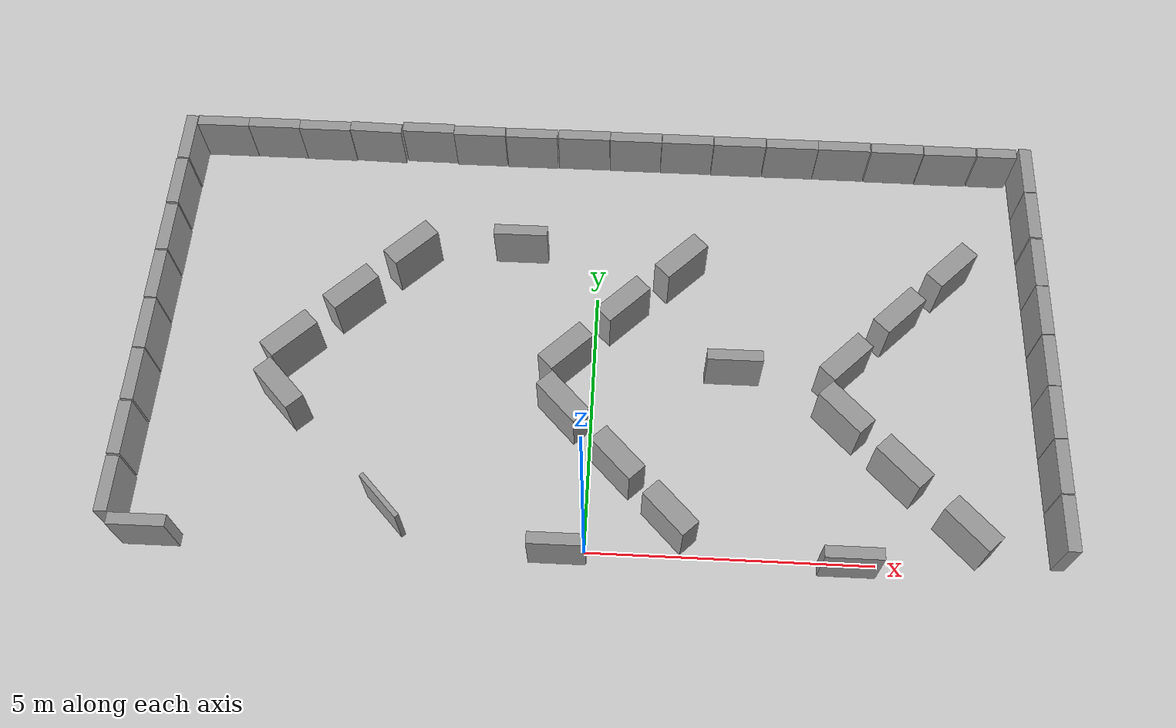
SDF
<sdf version="1.6">
 <world name="default">
  <model name="ground_plane">
   <static>1</static>
   <static>1</static>
   <link name="link">
    <collision name="collision">
     <geometry><plane><normal>0 0 1</normal><size>100 100</size></plane></geometry>
     <surface><friction><ode><mu>100</mu><mu2>50</mu2></ode></friction></surface>
    </collision>
    <visual name="visual">
     <cast_shadows>0</cast_shadows>
     <geometry><plane><normal>0 0 1</normal><size>100 100</size></plane></geometry>
     <material>
      <script><uri>file://media/materials/scripts/gazebo.material</uri><name>Gazebo/Grey</name></script>
     </material>
    </visual>
   </link>
  </model>
  <model name="unit_box_clone">
   <pose>-7.49845 8.11981 0.5 0 -0 0.000219</pose>
   <link name="link">
    <inertial>
     <mass>1</mass>
     <inertia>
      <ixx>0.166667</ixx>
      <ixy>0</ixy>
      <ixz>0</ixz>
      <iyy>0.166667</iyy>
      <iyz>0</iyz>
      <izz>0.166667</izz>
     </inertia>
    </inertial>
    <collision name="collision"><geometry><box><size>1 0.210541 1</size></box></geometry></collision>
    <visual name="visual">
     <geometry><box><size>1 0.210541 1</size></box></geometry>
     <material>
      <script><name>Gazebo/Grey</name><uri>file://media/materials/scripts/gazebo.material</uri></script>
     </material>
    </visual>
   </link>
  </model>
  <model name="unit_box_clone_0">
   <pose>-6.4973 8.11967 0.5 0 -0 -0.002385</pose>
   <link name="link">
    <inertial>
     <mass>1</mass>
     <inertia>
      <ixx>0.166667</ixx>
      <ixy>0</ixy>
      <ixz>0</ixz>
      <iyy>0.166667</iyy>
      <iyz>0</iyz>
      <izz>0.166667</izz>
     </inertia>
    </inertial>
    <collision name="collision"><geometry><box><size>1 0.210541 1</size></box></geometry></collision>
    <visual name="visual">
     <geometry><box><size>1 0.210541 1</size></box></geometry>
     <material>
      <script><name>Gazebo/Grey</name><uri>file://media/materials/scripts/gazebo.material</uri></script>
     </material>
    </visual>
   </link>
  </model>
  <model name="unit_box_clone_1">
   <pose>-5.49732 8.10842 0.5 0 -0 -0.002377</pose>
   <link name="link">
    <inertial>
     <mass>1</mass>
     <inertia>
      <ixx>0.166667</ixx>
      <ixy>0</ixy>
      <ixz>0</ixz>
      <iyy>0.166667</iyy>
      <iyz>0</iyz>
      <izz>0.166667</izz>
     </inertia>
    </inertial>
    <collision name="collision"><geometry><box><size>1 0.210541 1</size></box></geometry></collision>
    <visual name="visual">
     <geometry><box><size>1 0.210541 1</size></box></geometry>
     <material>
      <script><name>Gazebo/Grey</name><uri>file://media/materials/scripts/gazebo.material</uri></script>
     </material>
    </visual>
   </link>
  </model>
  <model name="unit_box_clone_2">
   <pose>-4.49485 8.11074 0.5 0 0 -0.02684</pose>
   <link name="link">
    <inertial>
     <mass>1</mass>
     <inertia>
      <ixx>0.166667</ixx>
      <ixy>0</ixy>
      <ixz>0</ixz>
      <iyy>0.166667</iyy>
      <iyz>0</iyz>
      <izz>0.166667</izz>
     </inertia>
    </inertial>
    <collision name="collision"><geometry><box><size>1 0.210541 1</size></box></geometry></collision>
    <visual name="visual">
     <geometry><box><size>1 0.210541 1</size></box></geometry>
     <material>
      <script><name>Gazebo/Grey</name><uri>file://media/materials/scripts/gazebo.material</uri></script>
     </material>
    </visual>
   </link>
  </model>
  <model name="unit_box_clone_3">
   <pose>-3.46835 8.1502 0.499999 1e-06 -2e-06 -0.007896</pose>
   <link name="link">
    <inertial>
     <mass>1</mass>
     <inertia>
      <ixx>0.166667</ixx>
      <ixy>0</ixy>
      <ixz>0</ixz>
      <iyy>0.166667</iyy>
      <iyz>0</iyz>
      <izz>0.166667</izz>
     </inertia>
    </inertial>
    <collision name="collision"><geometry><box><size>1 0.210541 1</size></box></geometry></collision>
    <visual name="visual">
     <geometry><box><size>1 0.210541 1</size></box></geometry>
     <material>
      <script><name>Gazebo/Grey</name><uri>file://media/materials/scripts/gazebo.material</uri></script>
     </material>
    </visual>
   </link>
  </model>
  <model name="unit_box_clone_4">
   <pose>-2.46316 8.1185 0.5 0 -0 0.000219</pose>
   <link name="link">
    <inertial>
     <mass>1</mass>
     <inertia>
      <ixx>0.166667</ixx>
      <ixy>0</ixy>
      <ixz>0</ixz>
      <iyy>0.166667</iyy>
      <iyz>0</iyz>
      <izz>0.166667</izz>
     </inertia>
    </inertial>
    <collision name="collision"><geometry><box><size>1 0.210541 1</size></box></geometry></collision>
    <visual name="visual">
     <geometry><box><size>1 0.210541 1</size></box></geometry>
     <material>
      <script><name>Gazebo/Grey</name><uri>file://media/materials/scripts/gazebo.material</uri></script>
     </material>
    </visual>
   </link>
  </model>
  <model name="unit_box_clone_5">
   <pose>-1.44425 8.11184 0.5 0 -0 0.000219</pose>
   <link name="link">
    <inertial>
     <mass>1</mass>
     <inertia>
      <ixx>0.166667</ixx>
      <ixy>0</ixy>
      <ixz>0</ixz>
      <iyy>0.166667</iyy>
      <iyz>0</iyz>
      <izz>0.166667</izz>
     </inertia>
    </inertial>
    <collision name="collision"><geometry><box><size>1 0.210541 1</size></box></geometry></collision>
    <visual name="visual">
     <geometry><box><size>1 0.210541 1</size></box></geometry>
     <material>
      <script><name>Gazebo/Grey</name><uri>file://media/materials/scripts/gazebo.material</uri></script>
     </material>
    </visual>
   </link>
  </model>
  <model name="unit_box_clone_6">
   <pose>-0.418684 8.11849 0.5 0 -0 0.000219</pose>
   <link name="link">
    <inertial>
     <mass>1</mass>
     <inertia>
      <ixx>0.166667</ixx>
      <ixy>0</ixy>
      <ixz>0</ixz>
      <iyy>0.166667</iyy>
      <iyz>0</iyz>
      <izz>0.166667</izz>
     </inertia>
    </inertial>
    <collision name="collision"><geometry><box><size>1 0.210541 1</size></box></geometry></collision>
    <visual name="visual">
     <geometry><box><size>1 0.210541 1</size></box></geometry>
     <material>
      <script><name>Gazebo/Grey</name><uri>file://media/materials/scripts/gazebo.material</uri></script>
     </material>
    </visual>
   </link>
  </model>
  <model name="unit_box_clone_7">
   <pose>0.592835 8.11136 0.5 0 -0 0.000219</pose>
   <link name="link">
    <inertial>
     <mass>1</mass>
     <inertia>
      <ixx>0.166667</ixx>
      <ixy>0</ixy>
      <ixz>0</ixz>
      <iyy>0.166667</iyy>
      <iyz>0</iyz>
      <izz>0.166667</izz>
     </inertia>
    </inertial>
    <collision name="collision"><geometry><box><size>1 0.210541 1</size></box></geometry></collision>
    <visual name="visual">
     <geometry><box><size>1 0.210541 1</size></box></geometry>
     <material>
      <script><name>Gazebo/Grey</name><uri>file://media/materials/scripts/gazebo.material</uri></script>
     </material>
    </visual>
   </link>
  </model>
  <model name="unit_box_clone_8">
   <pose>1.60043 8.10987 0.5 0 -0 0.000219</pose>
   <link name="link">
    <inertial>
     <mass>1</mass>
     <inertia>
      <ixx>0.166667</ixx>
      <ixy>0</ixy>
      <ixz>0</ixz>
      <iyy>0.166667</iyy>
      <iyz>0</iyz>
      <izz>0.166667</izz>
     </inertia>
    </inertial>
    <collision name="collision"><geometry><box><size>1 0.210541 1</size></box></geometry></collision>
    <visual name="visual">
     <geometry><box><size>1 0.210541 1</size></box></geometry>
     <material>
      <script><name>Gazebo/Grey</name><uri>file://media/materials/scripts/gazebo.material</uri></script>
     </material>
    </visual>
   </link>
  </model>
  <model name="unit_box_clone_9">
   <pose>2.60987 8.10268 0.5 0 -0 0.000219</pose>
   <link name="link">
    <inertial>
     <mass>1</mass>
     <inertia>
      <ixx>0.166667</ixx>
      <ixy>0</ixy>
      <ixz>0</ixz>
      <iyy>0.166667</iyy>
      <iyz>0</iyz>
      <izz>0.166667</izz>
     </inertia>
    </inertial>
    <collision name="collision"><geometry><box><size>1 0.210541 1</size></box></geometry></collision>
    <visual name="visual">
     <geometry><box><size>1 0.210541 1</size></box></geometry>
     <material>
      <script><name>Gazebo/Grey</name><uri>file://media/materials/scripts/gazebo.material</uri></script>
     </material>
    </visual>
   </link>
  </model>
  <model name="unit_box_clone_10">
   <pose>3.62649 8.09909 0.5 0 -0 0.000219</pose>
   <link name="link">
    <inertial>
     <mass>1</mass>
     <inertia>
      <ixx>0.166667</ixx>
      <ixy>0</ixy>
      <ixz>0</ixz>
      <iyy>0.166667</iyy>
      <iyz>0</iyz>
      <izz>0.166667</izz>
     </inertia>
    </inertial>
    <collision name="collision"><geometry><box><size>1 0.210541 1</size></box></geometry></collision>
    <visual name="visual">
     <geometry><box><size>1 0.210541 1</size></box></geometry>
     <material>
      <script><name>Gazebo/Grey</name><uri>file://media/materials/scripts/gazebo.material</uri></script>
     </material>
    </visual>
   </link>
  </model>
  <model name="unit_box_clone_11">
   <pose>4.63309 8.09541 0.5 -0 -0 -0.003256</pose>
   <link name="link">
    <inertial>
     <mass>1</mass>
     <inertia>
      <ixx>0.166667</ixx>
      <ixy>0</ixy>
      <ixz>0</ixz>
      <iyy>0.166667</iyy>
      <iyz>0</iyz>
      <izz>0.166667</izz>
     </inertia>
    </inertial>
    <collision name="collision"><geometry><box><size>1 0.210541 1</size></box></geometry></collision>
    <visual name="visual">
     <geometry><box><size>1 0.210541 1</size></box></geometry>
     <material>
      <script><name>Gazebo/Grey</name><uri>file://media/materials/scripts/gazebo.material</uri></script>
     </material>
    </visual>
   </link>
  </model>
  <model name="unit_box_0_clone_0">
   <pose>8.11522 6.68458 0.5 1e-06 -1e-06 -0.000319</pose>
   <link name="link">
    <inertial>
     <mass>1</mass>
     <inertia>
      <ixx>0.166667</ixx>
      <ixy>0</ixy>
      <ixz>0</ixz>
      <iyy>0.166667</iyy>
      <iyz>0</iyz>
      <izz>0.166667</izz>
     </inertia>
    </inertial>
    <collision name="collision"><geometry><box><size>0.230819 1 1</size></box></geometry></collision>
    <visual name="visual">
     <geometry><box><size>0.230819 1 1</size></box></geometry>
     <material>
      <script><name>Gazebo/Grey</name><uri>file://media/materials/scripts/gazebo.material</uri></script>
     </material>
    </visual>
   </link>
  </model>
  <model name="unit_box_0_clone_1">
   <pose>8.11915 5.6517 0.5 1e-06 1e-06 0.000218</pose>
   <link name="link">
    <inertial>
     <mass>1</mass>
     <inertia>
      <ixx>0.166667</ixx>
      <ixy>0</ixy>
      <ixz>0</ixz>
      <iyy>0.166667</iyy>
      <iyz>0</iyz>
      <izz>0.166667</izz>
     </inertia>
    </inertial>
    <collision name="collision"><geometry><box><size>0.230819 1 1</size></box></geometry></collision>
    <visual name="visual">
     <geometry><box><size>0.230819 1 1</size></box></geometry>
     <material>
      <script><name>Gazebo/Grey</name><uri>file://media/materials/scripts/gazebo.material</uri></script>
     </material>
    </visual>
   </link>
  </model>
  <model name="unit_box_0_clone_2">
   <pose>8.11914 4.64016 0.5 1e-06 1e-06 0.000312</pose>
   <link name="link">
    <inertial>
     <mass>1</mass>
     <inertia>
      <ixx>0.166667</ixx>
      <ixy>0</ixy>
      <ixz>0</ixz>
      <iyy>0.166667</iyy>
      <iyz>0</iyz>
      <izz>0.166667</izz>
     </inertia>
    </inertial>
    <collision name="collision"><geometry><box><size>0.230819 1 1</size></box></geometry></collision>
    <visual name="visual">
     <geometry><box><size>0.230819 1 1</size></box></geometry>
     <material>
      <script><name>Gazebo/Grey</name><uri>file://media/materials/scripts/gazebo.material</uri></script>
     </material>
    </visual>
   </link>
  </model>
  <model name="unit_box_0_clone_3">
   <pose>8.11914 3.62228 0.5 1e-06 1e-06 0.000293</pose>
   <link name="link">
    <inertial>
     <mass>1</mass>
     <inertia>
      <ixx>0.166667</ixx>
      <ixy>0</ixy>
      <ixz>0</ixz>
      <iyy>0.166667</iyy>
      <iyz>0</iyz>
      <izz>0.166667</izz>
     </inertia>
    </inertial>
    <collision name="collision"><geometry><box><size>0.230819 1 1</size></box></geometry></collision>
    <visual name="visual">
     <geometry><box><size>0.230819 1 1</size></box></geometry>
     <material>
      <script><name>Gazebo/Grey</name><uri>file://media/materials/scripts/gazebo.material</uri></script>
     </material>
    </visual>
   </link>
  </model>
  <model name="unit_box_0_clone_4">
   <pose>8.11332 2.61063 0.5 1e-06 -1e-06 -0.000943</pose>
   <link name="link">
    <inertial>
     <mass>1</mass>
     <inertia>
      <ixx>0.166667</ixx>
      <ixy>0</ixy>
      <ixz>0</ixz>
      <iyy>0.166667</iyy>
      <iyz>0</iyz>
      <izz>0.166667</izz>
     </inertia>
    </inertial>
    <collision name="collision"><geometry><box><size>0.230819 1 1</size></box></geometry></collision>
    <visual name="visual">
     <geometry><box><size>0.230819 1 1</size></box></geometry>
     <material>
      <script><name>Gazebo/Grey</name><uri>file://media/materials/scripts/gazebo.material</uri></script>
     </material>
    </visual>
   </link>
  </model>
  <model name="unit_box_0_clone_5">
   <pose>8.11277 1.59919 0.5 1e-06 1e-06 0.000293</pose>
   <link name="link">
    <inertial>
     <mass>1</mass>
     <inertia>
      <ixx>0.166667</ixx>
      <ixy>0</ixy>
      <ixz>0</ixz>
      <iyy>0.166667</iyy>
      <iyz>0</iyz>
      <izz>0.166667</izz>
     </inertia>
    </inertial>
    <collision name="collision"><geometry><box><size>0.230819 1 1</size></box></geometry></collision>
    <visual name="visual">
     <geometry><box><size>0.230819 1 1</size></box></geometry>
     <material>
      <script><name>Gazebo/Grey</name><uri>file://media/materials/scripts/gazebo.material</uri></script>
     </material>
    </visual>
   </link>
  </model>
  <model name="unit_box_0_clone_6">
   <pose>8.11277 0.574938 0.5 1e-06 1e-06 0.000293</pose>
   <link name="link">
    <inertial>
     <mass>1</mass>
     <inertia>
      <ixx>0.166667</ixx>
      <ixy>0</ixy>
      <ixz>0</ixz>
      <iyy>0.166667</iyy>
      <iyz>0</iyz>
      <izz>0.166667</izz>
     </inertia>
    </inertial>
    <collision name="collision"><geometry><box><size>0.230819 1 1</size></box></geometry></collision>
    <visual name="visual">
     <geometry><box><size>0.230819 1 1</size></box></geometry>
     <material>
      <script><name>Gazebo/Grey</name><uri>file://media/materials/scripts/gazebo.material</uri></script>
     </material>
    </visual>
   </link>
  </model>
  <model name="unit_box_0_clone_4_clone">
   <pose>-8.12647 7.71769 0.5 1e-06 1e-06 0.000293</pose>
   <link name="link">
    <inertial>
     <mass>1</mass>
     <inertia>
      <ixx>0.166667</ixx>
      <ixy>0</ixy>
      <ixz>0</ixz>
      <iyy>0.166667</iyy>
      <iyz>0</iyz>
      <izz>0.166667</izz>
     </inertia>
    </inertial>
    <collision name="collision"><geometry><box><size>0.230819 1 1</size></box></geometry></collision>
    <visual name="visual">
     <geometry><box><size>0.230819 1 1</size></box></geometry>
     <material>
      <script><name>Gazebo/Grey</name><uri>file://media/materials/scripts/gazebo.material</uri></script>
     </material>
    </visual>
   </link>
  </model>
  <model name="unit_box_0_clone_4_clone_0">
   <pose>-8.13281 6.68715 0.5 1e-06 1e-06 0.000293</pose>
   <link name="link">
    <inertial>
     <mass>1</mass>
     <inertia>
      <ixx>0.166667</ixx>
      <ixy>0</ixy>
      <ixz>0</ixz>
      <iyy>0.166667</iyy>
      <iyz>0</iyz>
      <izz>0.166667</izz>
     </inertia>
    </inertial>
    <collision name="collision"><geometry><box><size>0.230819 1 1</size></box></geometry></collision>
    <visual name="visual">
     <geometry><box><size>0.230819 1 1</size></box></geometry>
     <material>
      <script><name>Gazebo/Grey</name><uri>file://media/materials/scripts/gazebo.material</uri></script>
     </material>
    </visual>
   </link>
  </model>
  <model name="unit_box_0_clone_4_clone_1">
   <pose>-8.12606 5.64722 0.5 1e-06 1e-06 0.000293</pose>
   <link name="link">
    <inertial>
     <mass>1</mass>
     <inertia>
      <ixx>0.166667</ixx>
      <ixy>0</ixy>
      <ixz>0</ixz>
      <iyy>0.166667</iyy>
      <iyz>0</iyz>
      <izz>0.166667</izz>
     </inertia>
    </inertial>
    <collision name="collision"><geometry><box><size>0.230819 1 1</size></box></geometry></collision>
    <visual name="visual">
     <geometry><box><size>0.230819 1 1</size></box></geometry>
     <material>
      <script><name>Gazebo/Grey</name><uri>file://media/materials/scripts/gazebo.material</uri></script>
     </material>
    </visual>
   </link>
  </model>
  <model name="unit_box_0_clone_4_clone_2">
   <pose>-8.12607 4.6208 0.5 1e-06 1e-06 0.000293</pose>
   <link name="link">
    <inertial>
     <mass>1</mass>
     <inertia>
      <ixx>0.166667</ixx>
      <ixy>0</ixy>
      <ixz>0</ixz>
      <iyy>0.166667</iyy>
      <iyz>0</iyz>
      <izz>0.166667</izz>
     </inertia>
    </inertial>
    <collision name="collision"><geometry><box><size>0.230819 1 1</size></box></geometry></collision>
    <visual name="visual">
     <geometry><box><size>0.230819 1 1</size></box></geometry>
     <material>
      <script><name>Gazebo/Grey</name><uri>file://media/materials/scripts/gazebo.material</uri></script>
     </material>
    </visual>
   </link>
  </model>
  <model name="unit_box_0_clone_4_clone_3">
   <pose>-8.11932 3.59437 0.5 1e-06 1e-06 0.000293</pose>
   <link name="link">
    <inertial>
     <mass>1</mass>
     <inertia>
      <ixx>0.166667</ixx>
      <ixy>0</ixy>
      <ixz>0</ixz>
      <iyy>0.166667</iyy>
      <iyz>0</iyz>
      <izz>0.166667</izz>
     </inertia>
    </inertial>
    <collision name="collision"><geometry><box><size>0.230819 1 1</size></box></geometry></collision>
    <visual name="visual">
     <geometry><box><size>0.230819 1 1</size></box></geometry>
     <material>
      <script><name>Gazebo/Grey</name><uri>file://media/materials/scripts/gazebo.material</uri></script>
     </material>
    </visual>
   </link>
  </model>
  <model name="unit_box_0_clone_4_clone_4">
   <pose>-8.11932 2.57471 0.5 1e-06 1e-06 0.000293</pose>
   <link name="link">
    <inertial>
     <mass>1</mass>
     <inertia>
      <ixx>0.166667</ixx>
      <ixy>0</ixy>
      <ixz>0</ixz>
      <iyy>0.166667</iyy>
      <iyz>0</iyz>
      <izz>0.166667</izz>
     </inertia>
    </inertial>
    <collision name="collision"><geometry><box><size>0.230819 1 1</size></box></geometry></collision>
    <visual name="visual">
     <geometry><box><size>0.230819 1 1</size></box></geometry>
     <material>
      <script><name>Gazebo/Grey</name><uri>file://media/materials/scripts/gazebo.material</uri></script>
     </material>
    </visual>
   </link>
  </model>
  <model name="unit_box_0_clone_4_clone_5">
   <pose>-8.12608 1.54157 0.5 1e-06 1e-06 0.000293</pose>
   <link name="link">
    <inertial>
     <mass>1</mass>
     <inertia>
      <ixx>0.166667</ixx>
      <ixy>0</ixy>
      <ixz>0</ixz>
      <iyy>0.166667</iyy>
      <iyz>0</iyz>
      <izz>0.166667</izz>
     </inertia>
    </inertial>
    <collision name="collision"><geometry><box><size>0.230819 1 1</size></box></geometry></collision>
    <visual name="visual">
     <geometry><box><size>0.230819 1 1</size></box></geometry>
     <material>
      <script><name>Gazebo/Grey</name><uri>file://media/materials/scripts/gazebo.material</uri></script>
     </material>
    </visual>
   </link>
  </model>
  <model name="unit_box_0_clone_4_clone_6">
   <pose>-8.11933 0.50163 0.5 1e-06 1e-06 0.000293</pose>
   <link name="link">
    <inertial>
     <mass>1</mass>
     <inertia>
      <ixx>0.166667</ixx>
      <ixy>0</ixy>
      <ixz>0</ixz>
      <iyy>0.166667</iyy>
      <iyz>0</iyz>
      <izz>0.166667</izz>
     </inertia>
    </inertial>
    <collision name="collision"><geometry><box><size>0.230819 1 1</size></box></geometry></collision>
    <visual name="visual">
     <geometry><box><size>0.230819 1 1</size></box></geometry>
     <material>
      <script><name>Gazebo/Grey</name><uri>file://media/materials/scripts/gazebo.material</uri></script>
     </material>
    </visual>
   </link>
  </model>
  <model name="unit_box_0_clone_0_clone">
   <pose>8.11438 7.69322 0.5 1e-06 1e-06 0.0002</pose>
   <link name="link">
    <inertial>
     <mass>1</mass>
     <inertia>
      <ixx>0.166667</ixx>
      <ixy>0</ixy>
      <ixz>0</ixz>
      <iyy>0.166667</iyy>
      <iyz>0</iyz>
      <izz>0.166667</izz>
     </inertia>
    </inertial>
    <collision name="collision"><geometry><box><size>0.230819 1 1</size></box></geometry></collision>
    <visual name="visual">
     <geometry><box><size>0.230819 1 1</size></box></geometry>
     <material>
      <script><name>Gazebo/Grey</name><uri>file://media/materials/scripts/gazebo.material</uri></script>
     </material>
    </visual>
   </link>
  </model>
  <model name="unit_box_clone_11_clone">
   <pose>5.6544 8.08365 0.5 0 0 -0.002966</pose>
   <link name="link">
    <inertial>
     <mass>1</mass>
     <inertia>
      <ixx>0.166667</ixx>
      <ixy>0</ixy>
      <ixz>0</ixz>
      <iyy>0.166667</iyy>
      <iyz>0</iyz>
      <izz>0.166667</izz>
     </inertia>
    </inertial>
    <collision name="collision"><geometry><box><size>1 0.210541 1</size></box></geometry></collision>
    <visual name="visual">
     <geometry><box><size>1 0.210541 1</size></box></geometry>
     <material>
      <script><name>Gazebo/Grey</name><uri>file://media/materials/scripts/gazebo.material</uri></script>
     </material>
    </visual>
   </link>
  </model>
  <model name="unit_box_clone_11_clone_0">
   <pose>6.66439 8.0736 0.5 -0 -0 -0.003178</pose>
   <link name="link">
    <inertial>
     <mass>1</mass>
     <inertia>
      <ixx>0.166667</ixx>
      <ixy>0</ixy>
      <ixz>0</ixz>
      <iyy>0.166667</iyy>
      <iyz>0</iyz>
      <izz>0.166667</izz>
     </inertia>
    </inertial>
    <collision name="collision"><geometry><box><size>1 0.210541 1</size></box></geometry></collision>
    <visual name="visual">
     <geometry><box><size>1 0.210541 1</size></box></geometry>
     <material>
      <script><name>Gazebo/Grey</name><uri>file://media/materials/scripts/gazebo.material</uri></script>
     </material>
    </visual>
   </link>
  </model>
  <model name="unit_box_clone_11_clone_1_clone">
   <pose>7.56439 8.07324 0.499997 2e-06 8e-06 -0.005524</pose>
   <link name="link">
    <inertial>
     <mass>1</mass>
     <inertia>
      <ixx>0.166667</ixx>
      <ixy>0</ixy>
      <ixz>0</ixz>
      <iyy>0.166667</iyy>
      <iyz>0</iyz>
      <izz>0.166667</izz>
     </inertia>
    </inertial>
    <collision name="collision"><geometry><box><size>0.750223 0.210541 1</size></box></geometry></collision>
    <visual name="visual">
     <geometry><box><size>0.750223 0.210541 1</size></box></geometry>
     <material>
      <script><name>Gazebo/Grey</name><uri>file://media/materials/scripts/gazebo.material</uri></script>
     </material>
    </visual>
   </link>
  </model>
  <model name="unit_box_0_clone_4_clone_6_clone">
   <pose>-3.49008 0.514576 0.5 0 -0 0.766535</pose>
   <link name="link">
    <inertial>
     <mass>1</mass>
     <inertia>
      <ixx>0.166667</ixx>
      <ixy>0</ixy>
      <ixz>0</ixz>
      <iyy>0.166667</iyy>
      <iyz>0</iyz>
      <izz>0.166667</izz>
     </inertia>
    </inertial>
    <collision name="collision"><geometry><box><size>0.0869843 1 1</size></box></geometry></collision>
    <visual name="visual">
     <geometry><box><size>0.0869843 1 1</size></box></geometry>
     <material>
      <script><name>Gazebo/Grey</name><uri>file://media/materials/scripts/gazebo.material</uri></script>
     </material>
    </visual>
   </link>
  </model>
  <model name="unit_box_0_clone_4_clone_6_clone_clone_4">
   <pose>-5.52382 2.52329 0.5 1e-06 -0 0.767019</pose>
   <link name="link">
    <inertial>
     <mass>1</mass>
     <inertia>
      <ixx>0.166667</ixx>
      <ixy>0</ixy>
      <ixz>0</ixz>
      <iyy>0.166667</iyy>
      <iyz>0</iyz>
      <izz>0.166667</izz>
     </inertia>
    </inertial>
    <collision name="collision"><geometry><box><size>0.376 1 1</size></box></geometry></collision>
    <visual name="visual">
     <geometry><box><size>0.376 1 1</size></box></geometry>
     <material>
      <script><name>Gazebo/Grey</name><uri>file://media/materials/scripts/gazebo.material</uri></script>
     </material>
    </visual>
   </link>
  </model>
  <model name="unit_box_0_clone_4_clone_6_clone_clone_clone_2">
   <pose>-5.49238 3.51681 0.5 0 0 -0.78886</pose>
   <link name="link">
    <inertial>
     <mass>1</mass>
     <inertia>
      <ixx>0.166667</ixx>
      <ixy>0</ixy>
      <ixz>0</ixz>
      <iyy>0.166667</iyy>
      <iyz>0</iyz>
      <izz>0.166667</izz>
     </inertia>
    </inertial>
    <collision name="collision"><geometry><box><size>0.376 1 1</size></box></geometry></collision>
    <visual name="visual">
     <geometry><box><size>0.376 1 1</size></box></geometry>
     <material>
      <script><name>Gazebo/Grey</name><uri>file://media/materials/scripts/gazebo.material</uri></script>
     </material>
    </visual>
   </link>
  </model>
  <model name="unit_box_0_clone_4_clone_6_clone_clone_clone_3">
   <pose>-4.50938 4.53117 0.5 0 -0 -0.78886</pose>
   <link name="link">
    <inertial>
     <mass>1</mass>
     <inertia>
      <ixx>0.166667</ixx>
      <ixy>0</ixy>
      <ixz>0</ixz>
      <iyy>0.166667</iyy>
      <iyz>0</iyz>
      <izz>0.166667</izz>
     </inertia>
    </inertial>
    <collision name="collision"><geometry><box><size>0.376 1 1</size></box></geometry></collision>
    <visual name="visual">
     <geometry><box><size>0.376 1 1</size></box></geometry>
     <material>
      <script><name>Gazebo/Grey</name><uri>file://media/materials/scripts/gazebo.material</uri></script>
     </material>
    </visual>
   </link>
  </model>
  <model name="unit_box_0_clone_4_clone_6_clone_clone_clone_4">
   <pose>-3.51593 5.52461 0.5 0 0 -0.78886</pose>
   <link name="link">
    <inertial>
     <mass>1</mass>
     <inertia>
      <ixx>0.166667</ixx>
      <ixy>0</ixy>
      <ixz>0</ixz>
      <iyy>0.166667</iyy>
      <iyz>0</iyz>
      <izz>0.166667</izz>
     </inertia>
    </inertial>
    <collision name="collision"><geometry><box><size>0.376 1 1</size></box></geometry></collision>
    <visual name="visual">
     <geometry><box><size>0.376 1 1</size></box></geometry>
     <material>
      <script><name>Gazebo/Grey</name><uri>file://media/materials/scripts/gazebo.material</uri></script>
     </material>
    </visual>
   </link>
  </model>
  <model name="unit_box_0_clone_4_clone_6_clone_clone">
   <pose>1.4307 0.530142 0.5 0 -0 0.766725</pose>
   <link name="link">
    <inertial>
     <mass>1</mass>
     <inertia>
      <ixx>0.166667</ixx>
      <ixy>0</ixy>
      <ixz>0</ixz>
      <iyy>0.166667</iyy>
      <iyz>0</iyz>
      <izz>0.166667</izz>
     </inertia>
    </inertial>
    <collision name="collision"><geometry><box><size>0.376 1 1</size></box></geometry></collision>
    <visual name="visual">
     <geometry><box><size>0.376 1 1</size></box></geometry>
     <material>
      <script><name>Gazebo/Grey</name><uri>file://media/materials/scripts/gazebo.material</uri></script>
     </material>
    </visual>
   </link>
  </model>
  <model name="unit_box_0_clone_4_clone_6_clone_clone_3">
   <pose>0.501303 1.48474 0.500001 0 -6e-06 0.767081</pose>
   <link name="link">
    <inertial>
     <mass>1</mass>
     <inertia>
      <ixx>0.166667</ixx>
      <ixy>0</ixy>
      <ixz>0</ixz>
      <iyy>0.166667</iyy>
      <iyz>0</iyz>
      <izz>0.166667</izz>
     </inertia>
    </inertial>
    <collision name="collision"><geometry><box><size>0.376 1 1</size></box></geometry></collision>
    <visual name="visual">
     <geometry><box><size>0.376 1 1</size></box></geometry>
     <material>
      <script><name>Gazebo/Grey</name><uri>file://media/materials/scripts/gazebo.material</uri></script>
     </material>
    </visual>
   </link>
  </model>
  <model name="unit_box_0_clone_4_clone_6_clone_clone_5">
   <pose>-0.503082 2.49917 0.499999 1e-06 -0 0.766795</pose>
   <link name="link">
    <inertial>
     <mass>1</mass>
     <inertia>
      <ixx>0.166667</ixx>
      <ixy>0</ixy>
      <ixz>0</ixz>
      <iyy>0.166667</iyy>
      <iyz>0</iyz>
      <izz>0.166667</izz>
     </inertia>
    </inertial>
    <collision name="collision"><geometry><box><size>0.376 1 1</size></box></geometry></collision>
    <visual name="visual">
     <geometry><box><size>0.376 1 1</size></box></geometry>
     <material>
      <script><name>Gazebo/Grey</name><uri>file://media/materials/scripts/gazebo.material</uri></script>
     </material>
    </visual>
   </link>
  </model>
  <model name="unit_box_0_clone_4_clone_6_clone_clone_clone_1_clone">
   <pose>-0.509811 3.50322 0.499997 6e-06 -0 -0.790696</pose>
   <link name="link">
    <inertial>
     <mass>1</mass>
     <inertia>
      <ixx>0.166667</ixx>
      <ixy>0</ixy>
      <ixz>0</ixz>
      <iyy>0.166667</iyy>
      <iyz>0</iyz>
      <izz>0.166667</izz>
     </inertia>
    </inertial>
    <collision name="collision"><geometry><box><size>0.376 1 1</size></box></geometry></collision>
    <visual name="visual">
     <geometry><box><size>0.376 1 1</size></box></geometry>
     <material>
      <script><name>Gazebo/Grey</name><uri>file://media/materials/scripts/gazebo.material</uri></script>
     </material>
    </visual>
   </link>
  </model>
  <model name="unit_box_0_clone_4_clone_6_clone_clone_clone_1_clone_0">
   <pose>0.483218 4.51223 0.5 0 0 -0.79066</pose>
   <link name="link">
    <inertial>
     <mass>1</mass>
     <inertia>
      <ixx>0.166667</ixx>
      <ixy>0</ixy>
      <ixz>0</ixz>
      <iyy>0.166667</iyy>
      <iyz>0</iyz>
      <izz>0.166667</izz>
     </inertia>
    </inertial>
    <collision name="collision"><geometry><box><size>0.376 1 1</size></box></geometry></collision>
    <visual name="visual">
     <geometry><box><size>0.376 1 1</size></box></geometry>
     <material>
      <script><name>Gazebo/Grey</name><uri>file://media/materials/scripts/gazebo.material</uri></script>
     </material>
    </visual>
   </link>
  </model>
  <model name="unit_box_0_clone_4_clone_6_clone_clone_clone_1_clone_1">
   <pose>1.5243 5.47319 0.499997 6e-06 -0 -0.790621</pose>
   <link name="link">
    <inertial>
     <mass>1</mass>
     <inertia>
      <ixx>0.166667</ixx>
      <ixy>0</ixy>
      <ixz>0</ixz>
      <iyy>0.166667</iyy>
      <iyz>0</iyz>
      <izz>0.166667</izz>
     </inertia>
    </inertial>
    <collision name="collision"><geometry><box><size>0.376 1 1</size></box></geometry></collision>
    <visual name="visual">
     <geometry><box><size>0.376 1 1</size></box></geometry>
     <material>
      <script><name>Gazebo/Grey</name><uri>file://media/materials/scripts/gazebo.material</uri></script>
     </material>
    </visual>
   </link>
  </model>
  <model name="unit_box_0_clone_4_clone_6_clone_clone_6_clone_2">
   <pose>6.49462 0.494638 0.499996 -8e-06 -3e-06 0.76695</pose>
   <link name="link">
    <inertial>
     <mass>1</mass>
     <inertia>
      <ixx>0.166667</ixx>
      <ixy>0</ixy>
      <ixz>0</ixz>
      <iyy>0.166667</iyy>
      <iyz>0</iyz>
      <izz>0.166667</izz>
     </inertia>
    </inertial>
    <collision name="collision"><geometry><box><size>0.376 1 1</size></box></geometry></collision>
    <visual name="visual">
     <geometry><box><size>0.376 1 1</size></box></geometry>
     <material>
      <script><name>Gazebo/Grey</name><uri>file://media/materials/scripts/gazebo.material</uri></script>
     </material>
    </visual>
   </link>
  </model>
  <model name="unit_box_0_clone_4_clone_6_clone_clone_6_clone_3">
   <pose>5.41078 1.56194 0.499999 1e-06 -0 0.7668</pose>
   <link name="link">
    <inertial>
     <mass>1</mass>
     <inertia>
      <ixx>0.166667</ixx>
      <ixy>0</ixy>
      <ixz>0</ixz>
      <iyy>0.166667</iyy>
      <iyz>0</iyz>
      <izz>0.166667</izz>
     </inertia>
    </inertial>
    <collision name="collision"><geometry><box><size>0.376 1 1</size></box></geometry></collision>
    <visual name="visual">
     <geometry><box><size>0.376 1 1</size></box></geometry>
     <material>
      <script><name>Gazebo/Grey</name><uri>file://media/materials/scripts/gazebo.material</uri></script>
     </material>
    </visual>
   </link>
  </model>
  <model name="unit_box_0_clone_4_clone_6_clone_clone_6_clone_4">
   <pose>4.45841 2.53084 0.5 0 -0 0.766717</pose>
   <link name="link">
    <inertial>
     <mass>1</mass>
     <inertia>
      <ixx>0.166667</ixx>
      <ixy>0</ixy>
      <ixz>0</ixz>
      <iyy>0.166667</iyy>
      <iyz>0</iyz>
      <izz>0.166667</izz>
     </inertia>
    </inertial>
    <collision name="collision"><geometry><box><size>0.376 1 1</size></box></geometry></collision>
    <visual name="visual">
     <geometry><box><size>0.376 1 1</size></box></geometry>
     <material>
      <script><name>Gazebo/Grey</name><uri>file://media/materials/scripts/gazebo.material</uri></script>
     </material>
    </visual>
   </link>
  </model>
  <model name="unit_box_0_clone_4_clone_6_clone_clone_clone_1_clone_0_clone">
   <pose>4.49147 3.51584 0.499997 -6e-06 -0 -0.790658</pose>
   <link name="link">
    <inertial>
     <mass>1</mass>
     <inertia>
      <ixx>0.166667</ixx>
      <ixy>0</ixy>
      <ixz>0</ixz>
      <iyy>0.166667</iyy>
      <iyz>0</iyz>
      <izz>0.166667</izz>
     </inertia>
    </inertial>
    <collision name="collision"><geometry><box><size>0.376 1 1</size></box></geometry></collision>
    <visual name="visual">
     <geometry><box><size>0.376 1 1</size></box></geometry>
     <material>
      <script><name>Gazebo/Grey</name><uri>file://media/materials/scripts/gazebo.material</uri></script>
     </material>
    </visual>
   </link>
  </model>
  <model name="unit_box_0_clone_4_clone_6_clone_clone_clone_1_clone_0_clone_0">
   <pose>5.49315 4.51753 0.5 0 -0 -0.790622</pose>
   <link name="link">
    <inertial>
     <mass>1</mass>
     <inertia>
      <ixx>0.166667</ixx>
      <ixy>0</ixy>
      <ixz>0</ixz>
      <iyy>0.166667</iyy>
      <iyz>0</iyz>
      <izz>0.166667</izz>
     </inertia>
    </inertial>
    <collision name="collision"><geometry><box><size>0.376 1 1</size></box></geometry></collision>
    <visual name="visual">
     <geometry><box><size>0.376 1 1</size></box></geometry>
     <material>
      <script><name>Gazebo/Grey</name><uri>file://media/materials/scripts/gazebo.material</uri></script>
     </material>
    </visual>
   </link>
  </model>
  <model name="unit_box_0_clone_4_clone_6_clone_clone_clone_1_clone_0_clone_1">
   <pose>6.51125 5.51923 0.499997 -6e-06 0 -0.790583</pose>
   <link name="link">
    <inertial>
     <mass>1</mass>
     <inertia>
      <ixx>0.166667</ixx>
      <ixy>0</ixy>
      <ixz>0</ixz>
      <iyy>0.166667</iyy>
      <iyz>0</iyz>
      <izz>0.166667</izz>
     </inertia>
    </inertial>
    <collision name="collision"><geometry><box><size>0.376 1 1</size></box></geometry></collision>
    <visual name="visual">
     <geometry><box><size>0.376 1 1</size></box></geometry>
     <material>
      <script><name>Gazebo/Grey</name><uri>file://media/materials/scripts/gazebo.material</uri></script>
     </material>
    </visual>
   </link>
  </model>
  <model name="unit_box_clone_8_clone_0">
   <pose>4.48543 -0.110567 0.5 0 -0 0.000288</pose>
   <link name="link">
    <inertial>
     <mass>1</mass>
     <inertia>
      <ixx>0.166667</ixx>
      <ixy>0</ixy>
      <ixz>0</ixz>
      <iyy>0.166667</iyy>
      <iyz>0</iyz>
      <izz>0.166667</izz>
     </inertia>
    </inertial>
    <collision name="collision"><geometry><box><size>1 0.210541 1</size></box></geometry></collision>
    <visual name="visual">
     <geometry><box><size>1 0.210541 1</size></box></geometry>
     <material>
      <script><name>Gazebo/Grey</name><uri>file://media/materials/scripts/gazebo.material</uri></script>
     </material>
    </visual>
   </link>
  </model>
  <model name="unit_box_clone_8_clone_1">
   <pose>-0.460979 -0.110514 0.499999 0 -1e-06 0.000186</pose>
   <link name="link">
    <inertial>
     <mass>1</mass>
     <inertia>
      <ixx>0.166667</ixx>
      <ixy>0</ixy>
      <ixz>0</ixz>
      <iyy>0.166667</iyy>
      <iyz>0</iyz>
      <izz>0.166667</izz>
     </inertia>
    </inertial>
    <collision name="collision"><geometry><box><size>1 0.210541 1</size></box></geometry></collision>
    <visual name="visual">
     <geometry><box><size>1 0.210541 1</size></box></geometry>
     <material>
      <script><name>Gazebo/Grey</name><uri>file://media/materials/scripts/gazebo.material</uri></script>
     </material>
    </visual>
   </link>
  </model>
  <model name="unit_box_clone_8_clone_4">
   <pose>-7.48639 -0.112524 0.499999 -1e-06 -2e-06 0.00021</pose>
   <link name="link">
    <inertial>
     <mass>1</mass>
     <inertia>
      <ixx>0.166667</ixx>
      <ixy>0</ixy>
      <ixz>0</ixz>
      <iyy>0.166667</iyy>
      <iyz>0</iyz>
      <izz>0.166667</izz>
     </inertia>
    </inertial>
    <collision name="collision"><geometry><box><size>1 0.210541 1</size></box></geometry></collision>
    <visual name="visual">
     <geometry><box><size>1 0.210541 1</size></box></geometry>
     <material>
      <script><name>Gazebo/Grey</name><uri>file://media/materials/scripts/gazebo.material</uri></script>
     </material>
    </visual>
   </link>
  </model>
  <model name="unit_box_clone_8_clone_6">
   <pose>2.5234 3.45128 0.499998 0 -5e-06 0.000238</pose>
   <link name="link">
    <inertial>
     <mass>1</mass>
     <inertia>
      <ixx>0.166667</ixx>
      <ixy>0</ixy>
      <ixz>0</ixz>
      <iyy>0.166667</iyy>
      <iyz>0</iyz>
      <izz>0.166667</izz>
     </inertia>
    </inertial>
    <collision name="collision"><geometry><box><size>1 0.210541 1</size></box></geometry></collision>
    <visual name="visual">
     <geometry><box><size>1 0.210541 1</size></box></geometry>
     <material>
      <script><name>Gazebo/Grey</name><uri>file://media/materials/scripts/gazebo.material</uri></script>
     </material>
    </visual>
   </link>
  </model>
  <model name="unit_box_clone_8_clone_7">
   <pose>-1.49277 5.88263 0.5 0 -0 0.000139</pose>
   <link name="link">
    <inertial>
     <mass>1</mass>
     <inertia>
      <ixx>0.166667</ixx>
      <ixy>0</ixy>
      <ixz>0</ixz>
      <iyy>0.166667</iyy>
      <iyz>0</iyz>
      <izz>0.166667</izz>
     </inertia>
    </inertial>
    <collision name="collision"><geometry><box><size>1 0.210541 1</size></box></geometry></collision>
    <visual name="visual">
     <geometry><box><size>1 0.210541 1</size></box></geometry>
     <material>
      <script><name>Gazebo/Grey</name><uri>file://media/materials/scripts/gazebo.material</uri></script>
     </material>
    </visual>
   </link>
  </model>
 </world>
</sdf>
